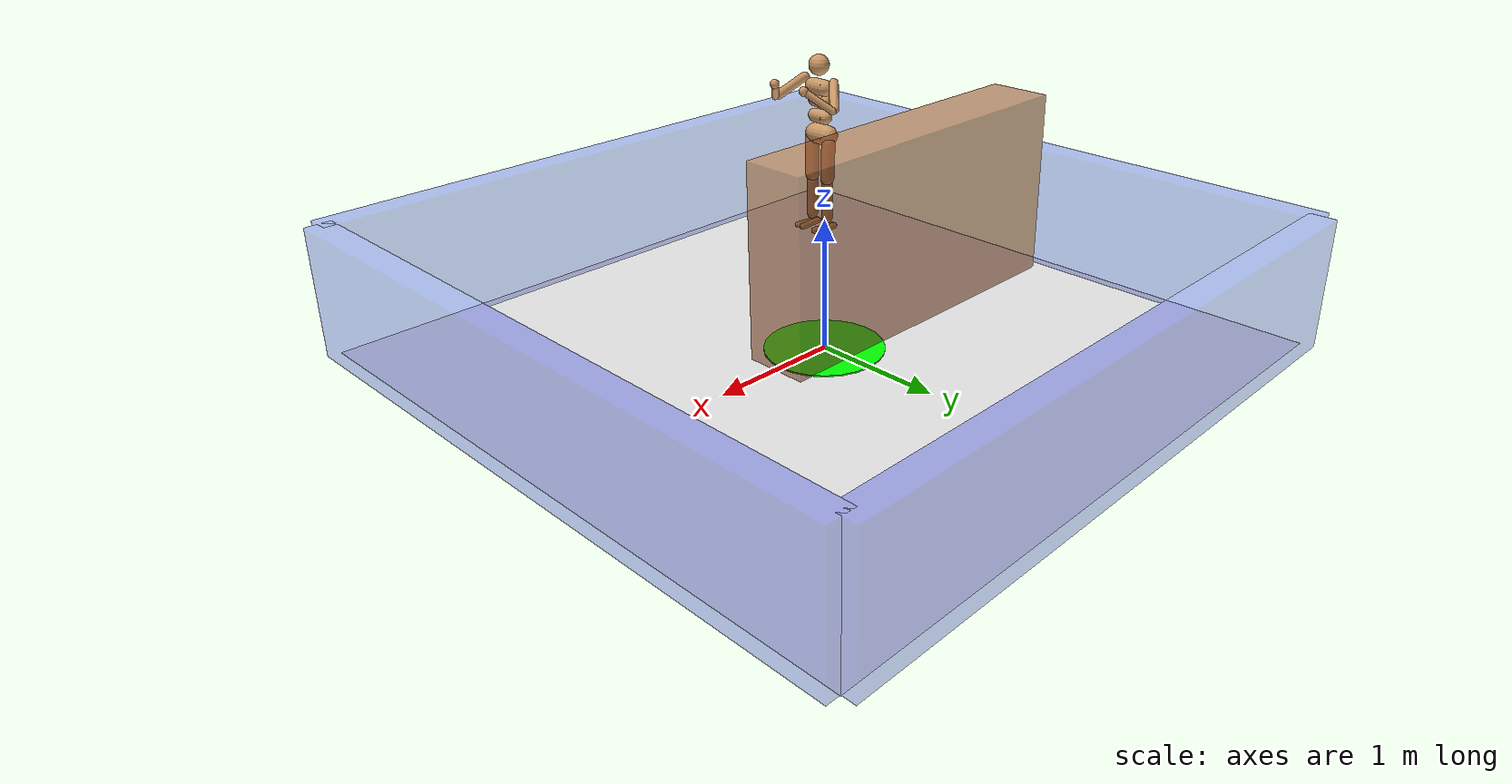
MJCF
<mujoco model="humanoid">
	<compiler inertiafromgeom="true" angle="degree"/>

    	<default>
        	<joint armature="1" damping="1" limited="true"/>
       		<geom conaffinity="1" condim="1" contype="1" margin="0.001"  rgba="0.8 0.6 .4 1"/>
        	<motor ctrllimited="true" ctrlrange="-.4 .4"/>
    	</default>
	<option integrator="RK4" iterations="50" solver="PGS" timestep="0.002">
		<flag energy="enable"/>
    	</option>
	<size nuser_geom='1' nkey='5' />
	<visual>
		<map fogstart="3" fogend="5"/>
	</visual>
	<asset>
		<texture name="texgeom" type="cube" builtin="flat" mark="cross" width="127" height="1278" rgb1="0.8 0.6 0.4" rgb2="0.8 0.6 0.4" markrgb="1 1 1" random="0.01" />
		<material name='geom' texture="texgeom" texuniform="true" />
	</asset>

	<worldbody>
		<light diffuse=".2 .2 .2" dir="0 0 -1" pos="0 0 2.5" />
		<!--light cutoff="100" diffuse="1 1 1" dir="-0 0 -1.3" directional="true" exponent="1" pos="0 0 1.3" specular=".1 .1 .1"/-->
		<geom conaffinity="1" condim="3" pos="0 0 0" size="2.5 2.5 2.5" rgba="0.9 0.9 0.9 1" type="plane" />
		<!--body name="torso" pos="1.3 0 1.4"-->

		<body name='torso' pos='-1.5 -1.5 1.4'>
			<joint name='root' type='free' pos='0 0 0' limited='false' damping='0' armature='0' stiffness='0' />
      			<geom name='torso1' type='capsule' fromto='0 -.07 0 0 .07 0' size='0.07' />
      			<geom name='head' type='sphere' pos='0 0 .19' size='.09' user='258' />
      			<geom name='uwaist' type='capsule' fromto='-.01 -.06 -.12 -.01 .06 -.12' size='0.06' />
      			<body name='lwaist' pos='-.01 0 -0.260' quat='1.000 0 -0.002 0'>
        			<geom name='lwaist' type='capsule' fromto='0 -.06 0 0 .06 0' size='0.06' />
        			<joint name='abdomen_z' type='hinge' pos='0 0 0.065' axis='0 0 1' range='-45 45' damping='5' stiffness='20' armature='0.02' />
        			<joint name='abdomen_y' type='hinge' pos='0 0 0.065' axis='0 1 0' range='-75 30' damping='5' stiffness='10' armature='0.02' />
        			<body name='pelvis' pos='0 0 -0.165' quat='1.000 0 -0.002 0'>
          				<joint name='abdomen_x' type='hinge' pos='0 0 0.1' axis='1 0 0' range='-35 35' damping='5' stiffness='10' armature='0.02' />
          				<geom name='butt' type='capsule' fromto='-.02 -.07 0 -.02 .07 0' size='0.09' />
          				<body name='right_thigh' pos='0 -0.1 -0.04'>
            					<joint name='right_hip_x' type='hinge' pos='0 0 0' axis='1 0 0' range='-25 5' damping='5' stiffness='10' armature='0.01' />
            					<joint name='right_hip_z' type='hinge' pos='0 0 0' axis='0 0 1' range='-60 35' damping='5' stiffness='10' armature='0.01' />
            					<joint name='right_hip_y' type='hinge' pos='0 0 0' axis='0 1 0' range='-110 20' damping='5' stiffness='20' armature='0.0080' />
            					<geom name='right_thigh1' type='capsule' fromto='0 0 0 0 0.01 -.34' size='0.06' />
            					<body name='right_shin' pos='0 0.01 -0.403'>
              						<joint name='right_knee' type='hinge' pos='0 0 .02' axis='0 -1 0' range='-160 -2' armature='0.0060' />
              						<geom name='right_shin1' type='capsule' fromto='0 0 0 0 0 -.3' size='0.049' />
              						<body name='right_foot' pos='0 0 -.39'>
                						<joint name='right_ankle_y' type='hinge' pos='0 0 0.08' axis='0 1 0' range='-50 50' stiffness='4' armature='0.0008' />
                						<joint name='right_ankle_x' type='hinge' pos='0 0 0.04' axis='1 0 0.5' range='-50 50' stiffness='1' armature='0.0006' />
                						<geom name='right_foot_cap1' type='capsule' fromto='-.07 -0.02 0 0.14 -0.04 0' size='0.027' />
                						<geom name='right_foot_cap2' type='capsule' fromto='-.07 0 0 0.14 0.02 0' size='0.027' />
              						</body>
            					</body>
          				</body>
          				<body name='left_thigh' pos='0 0.1 -0.04'>
            					<joint name='left_hip_x' type='hinge' pos='0 0 0' axis='-1 0 0' range='-25 5' damping='5' stiffness='10' armature='0.01' />
            					<joint name='left_hip_z' type='hinge' pos='0 0 0' axis='0 0 -1' range='-60 35' damping='5' stiffness='10' armature='0.01' />
            					<joint name='left_hip_y' type='hinge' pos='0 0 0' axis='0 1 0' range='-120 20' damping='5' stiffness='20' armature='0.01' />
            					<geom name='left_thigh1' type='capsule' fromto='0 0 0 0 -0.01 -.34' size='0.06' />
            					<body name='left_shin' pos='0 -0.01 -0.403'>
              						<joint name='left_knee' type='hinge' pos='0 0 .02' axis='0 -1 0' range='-160 -2' stiffness='1' armature='0.0060' />
              						<geom name='left_shin1' type='capsule' fromto='0 0 0 0 0 -.3' size='0.049' />
              						<body name='left_foot' pos='0 0 -.39'>
                						<joint name='left_ankle_y' type='hinge' pos='0 0 0.08' axis='0 1 0' range='-50 50' stiffness='4' armature='0.0008' />
                						<joint name='left_ankle_x' type='hinge' pos='0 0 0.04' axis='1 0 0.5' range='-50 50' stiffness='1' armature='0.0006' />
                						<geom name='left_foot_cap1' type='capsule' fromto='-.07 0.02 0 0.14 0.04 0' size='0.027' />
                						<geom name='left_foot_cap2' type='capsule' fromto='-.07 0 0 0.14 -0.02 0' size='0.027' />
              						</body>
            					</body>
          				</body>
        			</body>
			</body>

      			<body name='right_upper_arm' pos='0 -0.17 0.06'>
        			<joint name='right_shoulder1' type='hinge' pos='0 0 0' axis='2 1 1' range='-85 60' stiffness='1' armature='0.0068' />
        			<joint name='right_shoulder2' type='hinge' pos='0 0 0' axis='0 -1 1' range='-85 60' stiffness='1' armature='0.0051' />
        			<geom name='right_uarm1' type='capsule' fromto='0 0 0 .16 -.16 -.16' size='0.04 0.16' />
        			<body name='right_lower_arm' pos='.18 -.18 -.18'>
          				<joint name='right_elbow' type='hinge' pos='0 0 0' axis='0 -1 1' range='-90 50' stiffness='0' armature='0.0028' />
          				<geom name='right_larm' type='capsule' fromto='0.01 0.01 0.01 .17 .17 .17' size='0.031' />
          				<geom name='right_hand' type='sphere' pos='.18 .18 .18' size='0.04' />
          				<camera pos="0 0 0" />
        			</body>
      			</body>
      			<body name='left_upper_arm' pos='0 0.17 0.06'>
        			<joint name='left_shoulder1' type='hinge' pos='0 0 0' axis='2 -1 1' range='-60 85' stiffness='1' armature='0.0068' />
        			<joint name='left_shoulder2' type='hinge' pos='0 0 0' axis='0 1 1' range='-60 85' stiffness='1' armature='0.0051' />
        			<geom name='left_uarm1' type='capsule' fromto='0 0 0 .16 .16 -.16' size='0.04 0.16' />
        			<body name='left_lower_arm' pos='.18 .18 -.18'>
          				<joint name='left_elbow' type='hinge' pos='0 0 0' axis='0 -1 -1' range='-90 50' stiffness='0' armature='0.0028' />
          				<geom name='left_larm' type='capsule' fromto='0.01 -0.01 0.01 .17 -.17 .17' size='0.031' />
          				<geom name='left_hand' type='sphere' pos='.18 -.18 .18' size='0.04' />
        			</body>
      			</body>
    		</body>

		<geom pos="0 2.5 .5" conaffinity="1" rgba="0. .1 .9 .3" size="2.5 0.1 .5" type="box"/>
    		<geom pos="0 -2.5 .5" conaffinity="1" rgba="0. .1 .9 .3" size="2.5 0.1 .5" type="box"/>
    		<geom pos="2.5 0 .5" conaffinity="1" rgba="0 .1 .9 .3" size="0.1 2.5 .5" type="box"/>
		<geom pos="-2.5 0 .5" conaffinity="1" rgba="0 .1 .9 .3" size="0.1 2.5 .5" type="box"/>

		<body name="goal" pos = "0 0 0">
			<geom conaffinity="0" contype="0" density="0.00001" rgba="0 1 0 1" size="0.45 0.005 0.2" type="cylinder"/>
			<joint axis="1 0 0" damping="0.5" name="goal_slidex" pos="0 0 0" range="-10.3213 10.3" type="slide" />
            		<joint axis="0 1 0" damping="0.5" name="goal_slidey" pos="0 0 0" range="-10.3213 10.3" type="slide" />
		</body>

		<body name="obstacle_1" pos="-0.9 0 .75">
			<geom conaffinity="1" contype="1" name="distractor_1" pos="0 0 0" rgba="0.61 0.32 0.16 0.6" size="1.4 .25 .75" type="box"/>
        	</body>

	</worldbody>

	<tendon>
    		<fixed name='left_hipknee'>
      			<joint joint='left_hip_y' coef='-1' />
      			<joint joint='left_knee' coef='1' />
    		</fixed>
    		<fixed name='right_hipknee'>
      			<joint joint='right_hip_y' coef='-1' />
      			<joint joint='right_knee' coef='1' />
    		</fixed>
  	</tendon>

	<keyframe>
    		<key qpos='-0.0233227 0.00247283 0.0784829 0.728141 0.00223397 -0.685422 -0.00181805 -0.000580139 -0.245119 0.0329713 -0.0461148 0.0354257 0.252234 -0.0347763 -0.4663 -0.0313013 0.0285638 0.0147285 0.264063 -0.0346441 -0.559198 0.021724 -0.0333332 -0.718563 0.872778 0.000260393 0.733088 0.872748 1.3 0' />
    		<key qpos='0.0168601 -0.00192002 0.127167 0.762693 0.00191588 0.646754 -0.00210291 -0.000199049 0.0573113 -4.05731e-005 0.0134177 -0.00468944 0.0985945 -0.282695 -0.0469067 0.00874203 0.0263262 -0.00295056 0.0984851 -0.282098 -0.044293 0.00475795 0.127371 -0.42895 0.882402 -0.0980573 0.428506 0.88193 1.3 0' />
    		<key qpos='0.000471586 0.0317577 0.210587 0.758805 -0.583984 0.254155 0.136322 -0.0811633 0.0870309 -0.0935227 0.0904958 -0.0278004 -0.00978614 -0.359193 0.139761 -0.240168 0.060149 0.237062 -0.00622109 -0.252598 -0.00376874 -0.160597 0.25253 -0.278634 0.834376 -0.990444 -0.169065 0.652876 1.3 0' />
    		<key qpos='-0.0602175 0.048078 0.194579 -0.377418 -0.119412 -0.675073 -0.622553 0.139093 0.0710746 -0.0506027 0.0863461 0.196165 -0.0276685 -0.521954 -0.267784 0.179051 0.0371897 0.0560134 -0.032595 -0.0480022 0.0357436 0.108502 0.963806 0.157805 0.873092 -1.01145 -0.796409 0.24736 1.3 0' />
  	</keyframe>

  	<actuator>
    		<motor name='abdomen_y' gear='200' joint='abdomen_y' />
    		<motor name='abdomen_z' gear='200' joint='abdomen_z' />
    		<motor name='abdomen_x' gear='200' joint='abdomen_x' />
    		<motor name='right_hip_x' gear='200' joint='right_hip_x' />
    		<motor name='right_hip_z' gear='200' joint='right_hip_z' />
    		<motor name='right_hip_y' gear='600' joint='right_hip_y' />
    		<motor name='right_knee' gear='400' joint='right_knee' />
    		<motor name='right_ankle_x' gear='100' joint='right_ankle_x' />
    		<motor name='right_ankle_y' gear='100' joint='right_ankle_y' />
    		<motor name='left_hip_x' gear='200' joint='left_hip_x' />
    		<motor name='left_hip_z' gear='200' joint='left_hip_z' />
    		<motor name='left_hip_y' gear='600' joint='left_hip_y' />
    		<motor name='left_knee' gear='400' joint='left_knee' />
    		<motor name='left_ankle_x' gear='100' joint='left_ankle_x' />
    		<motor name='left_ankle_y' gear='100' joint='left_ankle_y' />
    		<motor name='right_shoulder1' gear='100' joint='right_shoulder1' />
    		<motor name='right_shoulder2' gear='100' joint='right_shoulder2' />
    		<motor name='right_elbow' gear='200' joint='right_elbow' />
    		<motor name='left_shoulder1' gear='100' joint='left_shoulder1' />
    		<motor name='left_shoulder2' gear='100' joint='left_shoulder2' />
    		<motor name='left_elbow' gear='200' joint='left_elbow' />
  	</actuator>

</mujoco>
